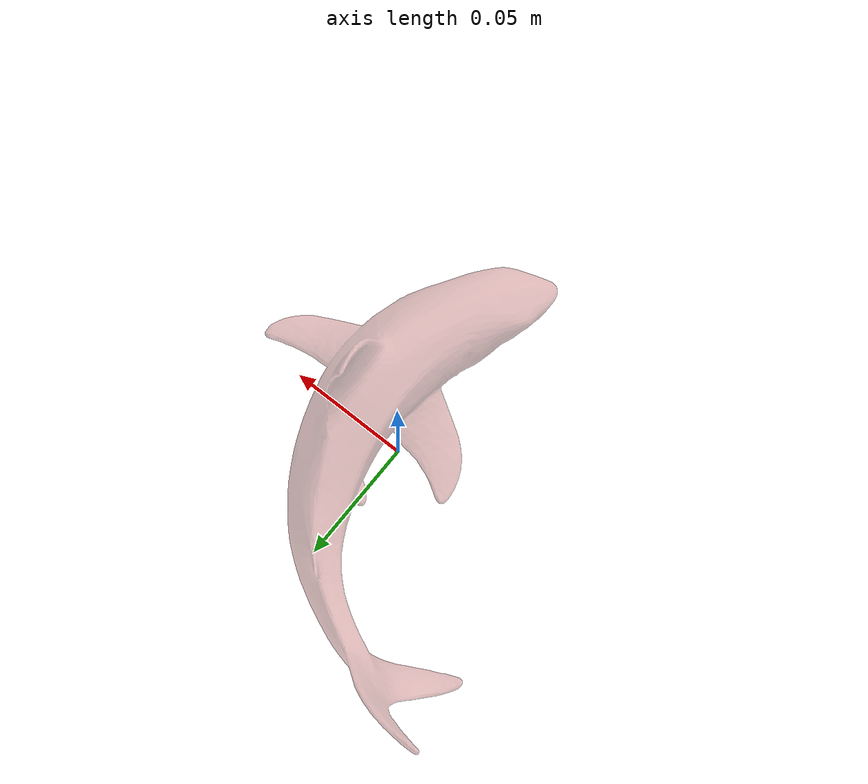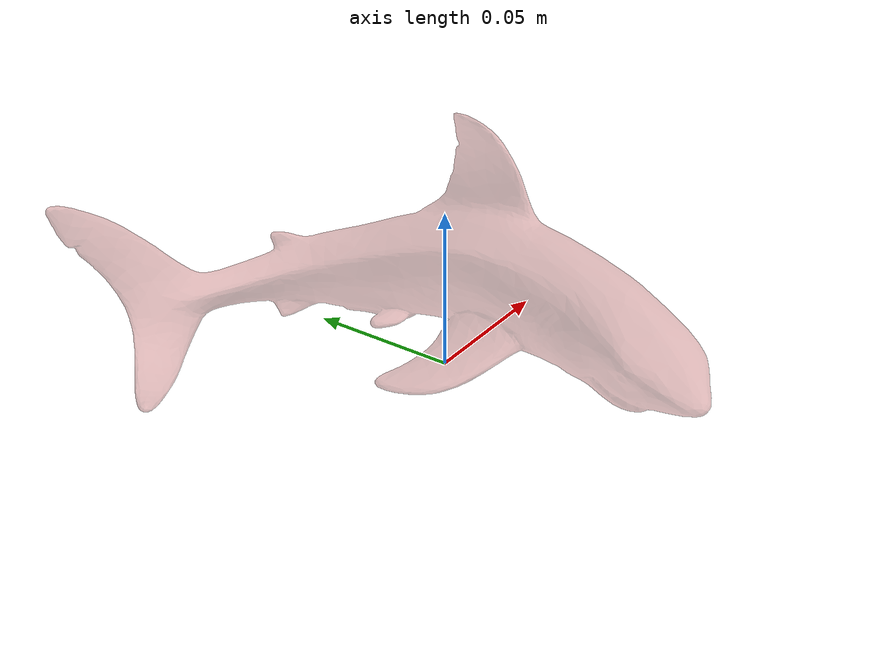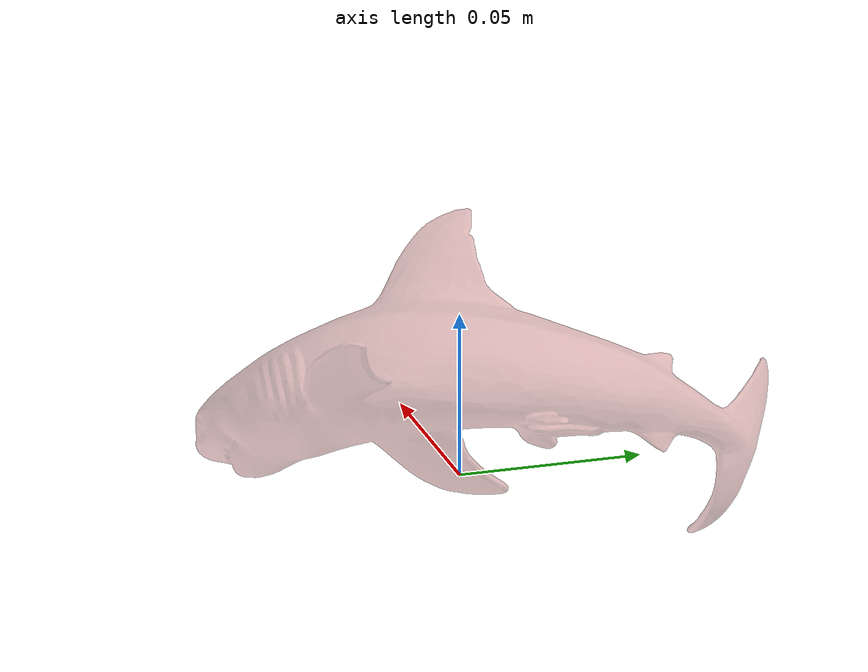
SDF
<?xml version="1.0"?>
<sdf version="1.7">
  <model name="shark">
    <link name="shark">
      <pose>0 0 0 0 0 0</pose>
      <inertial>
        <pose>0 0 0 0 0 0</pose>
        <mass>5.0e3</mass>
        <inertia>
          <ixx>16.8333</ixx>
          <ixy>0</ixy>
          <ixz>0</ixz>
          <iyy>16.8333</iyy>
          <iyz>0</iyz>
          <izz>33.3333</izz>
        </inertia>
      </inertial>
      <visual name="visual">
        <pose>0 0 0 0 0 0</pose>
        <geometry>
          <mesh>
            <uri>package://drake/examples/hydroelastic/python_nonconvex_mesh/shark.obj</uri>
          </mesh>
        </geometry>
        <material>
          <diffuse>0.8 0.5 0.5 0.5</diffuse>
        </material>
      </visual>
      <collision name="collision">
        <pose>0 0 0 0 0 0</pose>
        <geometry>
          <mesh>
            <uri>package://drake/examples/hydroelastic/python_nonconvex_mesh/shark_combined_refined_sdf.vtk</uri>
          </mesh>
        </geometry>
        <drake:proximity_properties>
          <drake:compliant_hydroelastic/>
          <drake:hydroelastic_modulus>1e3</drake:hydroelastic_modulus>
          <drake:mesh_resolution_hint>0.01</drake:mesh_resolution_hint>
          <!-- Both mu_dynamic and mu_static are used in Continuous system.
            Only mu_dynamic is used in Discrete system.
          -->
          <drake:mu_dynamic>1.0</drake:mu_dynamic>
          <drake:mu_static>1.0</drake:mu_static>
        </drake:proximity_properties>
      </collision>
    </link>
  </model>
</sdf>
